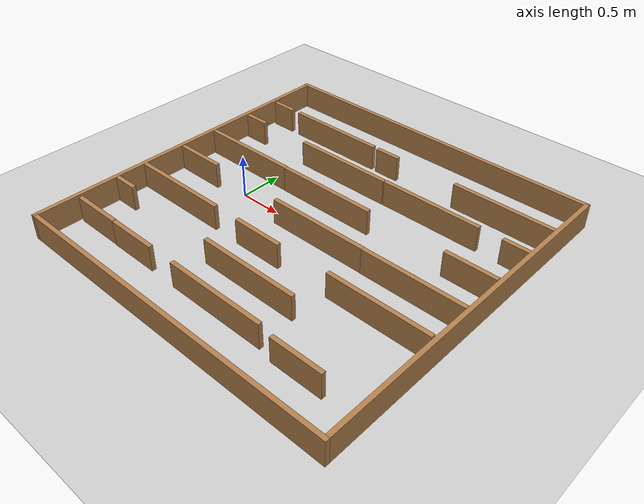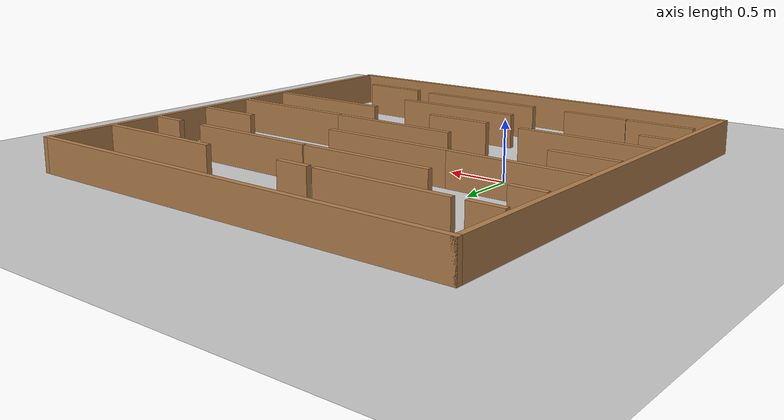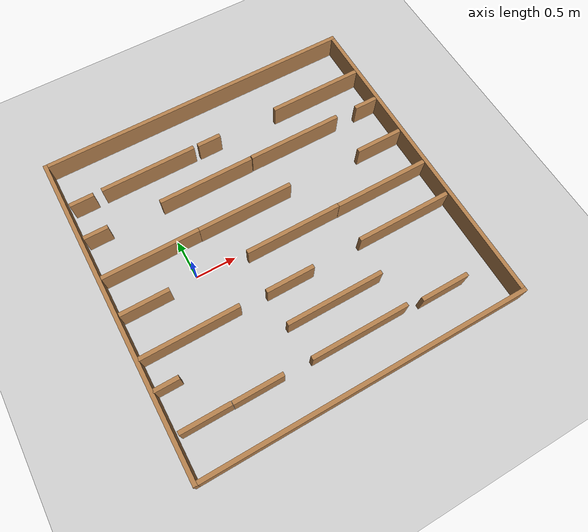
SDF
<sdf version="1.7">
 <world name="default">
  <light name="sun" type="directional">
   <pose>0 0 10 0 -0 0</pose>
   <diffuse>0.8 0.8 0.8 1</diffuse>
   <specular>0.2 0.2 0.2 1</specular>
   <attenuation>
    <range>1000</range>
    <constant>0.9</constant>
    <linear>0.01</linear>
    <quadratic>0.001</quadratic>
   </attenuation>
   <direction>-0.5 0.1 -0.9</direction>
   <spot><inner_angle>0</inner_angle><outer_angle>0</outer_angle><falloff>0</falloff></spot>
  </light>
  <model name="ground_plane">
   <static>1</static>
   <link name="link">
    <collision name="collision">
     <geometry><plane><normal>0 0 1</normal><size>100 100</size></plane></geometry>
     <surface>
      <contact><collide_bitmask>65535</collide_bitmask></contact>
      <friction><ode><mu>100</mu><mu2>50</mu2></ode></friction>
     </surface>
    </collision>
    <visual name="visual">
     <cast_shadows>0</cast_shadows>
     <geometry><plane><normal>0 0 1</normal><size>100 100</size></plane></geometry>
     <material>
      <script><uri>file://media/materials/scripts/gazebo.material</uri><name>Gazebo/Grey</name></script>
     </material>
    </visual>
   </link>
  </model>
  <gravity>0 0 -9.8</gravity>
  <magnetic_field>6e-06 2.3e-05 -4.2e-05</magnetic_field>
  <atmosphere type="adiabatic"/>
  <physics type="ode">
   <max_step_size>0.001</max_step_size>
   <real_time_factor>1</real_time_factor>
   <real_time_update_rate>1000</real_time_update_rate>
  </physics>
  <scene><ambient>0.4 0.4 0.4 1</ambient><background>0.7 0.7 0.7 1</background><shadows>1</shadows></scene>
  <audio><device>default</device></audio>
  <spherical_coordinates>
   <surface_model>EARTH_WGS84</surface_model>
   <latitude_deg>0</latitude_deg>
   <longitude_deg>0</longitude_deg>
   <elevation>0</elevation>
   <heading_deg>0</heading_deg>
  </spherical_coordinates>
  <model name="square4m">
   <pose>1.02966 0.01933 0 0 -0 0</pose>
   <link name="Wall_10">
    <collision name="Wall_10_Collision">
     <geometry><box><size>4.05 0.05 0.3</size></box></geometry>
     <pose>0 0 0.15 0 -0 0</pose>
    </collision>
    <visual name="Wall_10_Visual">
     <pose>0 0 0.15 0 -0 0</pose>
     <geometry><box><size>4.05 0.05 0.3</size></box></geometry>
     <material>
      <script><uri>file://media/materials/scripts/gazebo.material</uri><name>Gazebo/Wood</name></script>
      <ambient>1 1 1 1</ambient>
     </material>
     <meta><layer>0</layer></meta>
    </visual>
    <pose>0 2 0 0 -0 0</pose>
   </link>
   <link name="Wall_12">
    <collision name="Wall_12_Collision">
     <geometry><box><size>4.05 0.05 0.3</size></box></geometry>
     <pose>0 0 0.15 0 -0 0</pose>
    </collision>
    <visual name="Wall_12_Visual">
     <pose>0 0 0.15 0 -0 0</pose>
     <geometry><box><size>4.05 0.05 0.3</size></box></geometry>
     <material>
      <script><uri>file://media/materials/scripts/gazebo.material</uri><name>Gazebo/Wood</name></script>
      <ambient>1 1 1 1</ambient>
     </material>
     <meta><layer>0</layer></meta>
    </visual>
    <pose>2 0 0 0 -0 -1.5708</pose>
   </link>
   <link name="Wall_14">
    <collision name="Wall_14_Collision">
     <geometry><box><size>4.05 0.05 0.3</size></box></geometry>
     <pose>0 0 0.15 0 -0 0</pose>
    </collision>
    <visual name="Wall_14_Visual">
     <pose>0 0 0.15 0 -0 0</pose>
     <geometry><box><size>4.05 0.05 0.3</size></box></geometry>
     <material>
      <script><uri>file://media/materials/scripts/gazebo.material</uri><name>Gazebo/Wood</name></script>
      <ambient>1 1 1 1</ambient>
     </material>
     <meta><layer>0</layer></meta>
    </visual>
    <pose>0 -2 0 0 -0 3.14159</pose>
   </link>
   <link name="Wall_8">
    <collision name="Wall_8_Collision">
     <geometry><box><size>4.05 0.05 0.3</size></box></geometry>
     <pose>0 0 0.15 0 -0 0</pose>
    </collision>
    <visual name="Wall_8_Visual">
     <pose>0 0 0.15 0 -0 0</pose>
     <geometry><box><size>4.05 0.05 0.3</size></box></geometry>
     <material>
      <script><uri>file://media/materials/scripts/gazebo.material</uri><name>Gazebo/Wood</name></script>
      <ambient>1 1 1 1</ambient>
     </material>
     <meta><layer>0</layer></meta>
    </visual>
    <pose>-2 0 0 0 -0 -1.5708</pose>
   </link>
   <static>1</static>
  </model>
  <model name="wall120cm">
   <pose>1.23004 -1.49223 0 0 -0 0</pose>
   <link name="Wall_11">
    <collision name="Wall_11_Collision">
     <geometry><box><size>1.2 0.05 0.3</size></box></geometry>
     <pose>0 0 0.15 0 -0 0</pose>
    </collision>
    <visual name="Wall_11_Visual">
     <pose>0 0 0.15 0 -0 0</pose>
     <geometry><box><size>1.2 0.05 0.3</size></box></geometry>
     <material>
      <script><uri>file://media/materials/scripts/gazebo.material</uri><name>Gazebo/Wood</name></script>
      <ambient>1 1 1 1</ambient>
     </material>
     <meta><layer>0</layer></meta>
    </visual>
   </link>
   <static>1</static>
  </model>
  <model name="wall60cm_0">
   <pose>-0.605472 -1.48388 0 0 -0 0</pose>
   <link name="Wall_4">
    <collision name="Wall_4_Collision">
     <geometry><box><size>0.6 0.05 0.3</size></box></geometry>
     <pose>0 0 0.15 0 -0 0</pose>
    </collision>
    <visual name="Wall_4_Visual">
     <pose>0 0 0.15 0 -0 0</pose>
     <geometry><box><size>0.6 0.05 0.3</size></box></geometry>
     <material>
      <script><uri>file://media/materials/scripts/gazebo.material</uri><name>Gazebo/Wood</name></script>
      <ambient>1 1 1 1</ambient>
     </material>
     <meta><layer>0</layer></meta>
    </visual>
   </link>
   <static>1</static>
  </model>
  <model name="wall60cm_1">
   <pose>-7e-06 -1.48777 0 0 -0 0</pose>
   <link name="Wall_4">
    <collision name="Wall_4_Collision">
     <geometry><box><size>0.6 0.05 0.3</size></box></geometry>
     <pose>0 0 0.15 0 -0 0</pose>
    </collision>
    <visual name="Wall_4_Visual">
     <pose>0 0 0.15 0 -0 0</pose>
     <geometry><box><size>0.6 0.05 0.3</size></box></geometry>
     <material>
      <script><uri>file://media/materials/scripts/gazebo.material</uri><name>Gazebo/Wood</name></script>
      <ambient>1 1 1 1</ambient>
     </material>
     <meta><layer>0</layer></meta>
    </visual>
   </link>
   <static>1</static>
  </model>
  <model name="wall120cm_0">
   <pose>1.1896 -1.04862 0 0 -0 0</pose>
   <link name="Wall_11">
    <collision name="Wall_11_Collision">
     <geometry><box><size>1.2 0.05 0.3</size></box></geometry>
     <pose>0 0 0.15 0 -0 0</pose>
    </collision>
    <visual name="Wall_11_Visual">
     <pose>0 0 0.15 0 -0 0</pose>
     <geometry><box><size>1.2 0.05 0.3</size></box></geometry>
     <material>
      <script><uri>file://media/materials/scripts/gazebo.material</uri><name>Gazebo/Wood</name></script>
      <ambient>1 1 1 1</ambient>
     </material>
     <meta><layer>0</layer></meta>
    </visual>
   </link>
   <static>1</static>
  </model>
  <model name="wall60cm">
   <pose>2.29958 -1.5295 0 0 -0 0</pose>
   <link name="Wall_4">
    <collision name="Wall_4_Collision">
     <geometry><box><size>0.6 0.05 0.3</size></box></geometry>
     <pose>0 0 0.15 0 -0 0</pose>
    </collision>
    <visual name="Wall_4_Visual">
     <pose>0 0 0.15 0 -0 0</pose>
     <geometry><box><size>0.6 0.05 0.3</size></box></geometry>
     <material>
      <script><uri>file://media/materials/scripts/gazebo.material</uri><name>Gazebo/Wood</name></script>
      <ambient>1 1 1 1</ambient>
     </material>
     <meta><layer>0</layer></meta>
    </visual>
   </link>
   <static>1</static>
  </model>
  <model name="wall120cm_1">
   <pose>2.39179 -0.602817 0 0 -0 0</pose>
   <link name="Wall_11">
    <collision name="Wall_11_Collision">
     <geometry><box><size>1.2 0.05 0.3</size></box></geometry>
     <pose>0 0 0.15 0 -0 0</pose>
    </collision>
    <visual name="Wall_11_Visual">
     <pose>0 0 0.15 0 -0 0</pose>
     <geometry><box><size>1.2 0.05 0.3</size></box></geometry>
     <material>
      <script><uri>file://media/materials/scripts/gazebo.material</uri><name>Gazebo/Wood</name></script>
      <ambient>1 1 1 1</ambient>
     </material>
     <meta><layer>0</layer></meta>
    </visual>
   </link>
   <static>1</static>
  </model>
  <model name="wall60cm_2">
   <pose>0.871927 -0.621729 0 0 -0 0</pose>
   <link name="Wall_4">
    <collision name="Wall_4_Collision">
     <geometry><box><size>0.6 0.05 0.3</size></box></geometry>
     <pose>0 0 0.15 0 -0 0</pose>
    </collision>
    <visual name="Wall_4_Visual">
     <pose>0 0 0.15 0 -0 0</pose>
     <geometry><box><size>0.6 0.05 0.3</size></box></geometry>
     <material>
      <script><uri>file://media/materials/scripts/gazebo.material</uri><name>Gazebo/Wood</name></script>
      <ambient>1 1 1 1</ambient>
     </material>
     <meta><layer>0</layer></meta>
    </visual>
   </link>
   <static>1</static>
  </model>
  <model name="wall120cm_2">
   <pose>-0.351481 -0.61855 0 0 -0 0</pose>
   <link name="Wall_11">
    <collision name="Wall_11_Collision">
     <geometry><box><size>1.2 0.05 0.3</size></box></geometry>
     <pose>0 0 0.15 0 -0 0</pose>
    </collision>
    <visual name="Wall_11_Visual">
     <pose>0 0 0.15 0 -0 0</pose>
     <geometry><box><size>1.2 0.05 0.3</size></box></geometry>
     <material>
      <script><uri>file://media/materials/scripts/gazebo.material</uri><name>Gazebo/Wood</name></script>
      <ambient>1 1 1 1</ambient>
     </material>
     <meta><layer>0</layer></meta>
    </visual>
   </link>
   <static>1</static>
  </model>
  <model name="wall120cm_3">
   <pose>2.40266 -0.116955 0 0 -0 0</pose>
   <link name="Wall_11">
    <collision name="Wall_11_Collision">
     <geometry><box><size>1.2 0.05 0.3</size></box></geometry>
     <pose>0 0 0.15 0 -0 0</pose>
    </collision>
    <visual name="Wall_11_Visual">
     <pose>0 0 0.15 0 -0 0</pose>
     <geometry><box><size>1.2 0.05 0.3</size></box></geometry>
     <material>
      <script><uri>file://media/materials/scripts/gazebo.material</uri><name>Gazebo/Wood</name></script>
      <ambient>1 1 1 1</ambient>
     </material>
     <meta><layer>0</layer></meta>
    </visual>
   </link>
   <static>1</static>
  </model>
  <model name="wall120cm_4">
   <pose>1.20697 -0.113841 0 0 -0 0</pose>
   <link name="Wall_11">
    <collision name="Wall_11_Collision">
     <geometry><box><size>1.2 0.05 0.3</size></box></geometry>
     <pose>0 0 0.15 0 -0 0</pose>
    </collision>
    <visual name="Wall_11_Visual">
     <pose>0 0 0.15 0 -0 0</pose>
     <geometry><box><size>1.2 0.05 0.3</size></box></geometry>
     <material>
      <script><uri>file://media/materials/scripts/gazebo.material</uri><name>Gazebo/Wood</name></script>
      <ambient>1 1 1 1</ambient>
     </material>
     <meta><layer>0</layer></meta>
    </visual>
   </link>
   <static>1</static>
  </model>
  <model name="wall60cm_3">
   <pose>-0.6378 -0.084483 0 0 -0 0</pose>
   <link name="Wall_4">
    <collision name="Wall_4_Collision">
     <geometry><box><size>0.6 0.05 0.3</size></box></geometry>
     <pose>0 0 0.15 0 -0 0</pose>
    </collision>
    <visual name="Wall_4_Visual">
     <pose>0 0 0.15 0 -0 0</pose>
     <geometry><box><size>0.6 0.05 0.3</size></box></geometry>
     <material>
      <script><uri>file://media/materials/scripts/gazebo.material</uri><name>Gazebo/Wood</name></script>
      <ambient>1 1 1 1</ambient>
     </material>
     <meta><layer>0</layer></meta>
    </visual>
   </link>
   <static>1</static>
  </model>
  <model name="wall120cm_5">
   <pose>-0.341666 0.397904 0 0 -0 0</pose>
   <link name="Wall_11">
    <collision name="Wall_11_Collision">
     <geometry><box><size>1.2 0.05 0.3</size></box></geometry>
     <pose>0 0 0.15 0 -0 0</pose>
    </collision>
    <visual name="Wall_11_Visual">
     <pose>0 0 0.15 0 -0 0</pose>
     <geometry><box><size>1.2 0.05 0.3</size></box></geometry>
     <material>
      <script><uri>file://media/materials/scripts/gazebo.material</uri><name>Gazebo/Wood</name></script>
      <ambient>1 1 1 1</ambient>
     </material>
     <meta><layer>0</layer></meta>
    </visual>
   </link>
   <static>1</static>
  </model>
  <model name="wall120cm_6">
   <pose>0.855686 0.394789 0 0 -0 0</pose>
   <link name="Wall_11">
    <collision name="Wall_11_Collision">
     <geometry><box><size>1.2 0.05 0.3</size></box></geometry>
     <pose>0 0 0.15 0 -0 0</pose>
    </collision>
    <visual name="Wall_11_Visual">
     <pose>0 0 0.15 0 -0 0</pose>
     <geometry><box><size>1.2 0.05 0.3</size></box></geometry>
     <material>
      <script><uri>file://media/materials/scripts/gazebo.material</uri><name>Gazebo/Wood</name></script>
      <ambient>1 1 1 1</ambient>
     </material>
     <meta><layer>0</layer></meta>
    </visual>
   </link>
   <static>1</static>
  </model>
  <model name="wall30cm">
   <pose>-0.804924 -0.989571 0 0 -0 0</pose>
   <link name="Wall_0">
    <collision name="Wall_0_Collision">
     <geometry><box><size>0.3 0.05 0.3</size></box></geometry>
     <pose>0 0 0.15 0 -0 0</pose>
    </collision>
    <visual name="Wall_0_Visual">
     <pose>0 0 0.15 0 -0 0</pose>
     <geometry><box><size>0.3 0.05 0.3</size></box></geometry>
     <material>
      <script><uri>file://media/materials/scripts/gazebo.material</uri><name>Gazebo/Wood</name></script>
      <ambient>1 1 1 1</ambient>
     </material>
     <meta><layer>0</layer></meta>
    </visual>
   </link>
   <static>1</static>
  </model>
  <model name="wall60cm_4">
   <pose>2.69775 0.389993 0 0 -0 0</pose>
   <link name="Wall_4">
    <collision name="Wall_4_Collision">
     <geometry><box><size>0.6 0.05 0.3</size></box></geometry>
     <pose>0 0 0.15 0 -0 0</pose>
    </collision>
    <visual name="Wall_4_Visual">
     <pose>0 0 0.15 0 -0 0</pose>
     <geometry><box><size>0.6 0.05 0.3</size></box></geometry>
     <material>
      <script><uri>file://media/materials/scripts/gazebo.material</uri><name>Gazebo/Wood</name></script>
      <ambient>1 1 1 1</ambient>
     </material>
     <meta><layer>0</layer></meta>
    </visual>
   </link>
   <static>1</static>
  </model>
  <model name="wall30cm_0">
   <pose>2.85323 0.93421 0 0 -0 0</pose>
   <link name="Wall_0">
    <collision name="Wall_0_Collision">
     <geometry><box><size>0.3 0.05 0.3</size></box></geometry>
     <pose>0 0 0.15 0 -0 0</pose>
    </collision>
    <visual name="Wall_0_Visual">
     <pose>0 0 0.15 0 -0 0</pose>
     <geometry><box><size>0.3 0.05 0.3</size></box></geometry>
     <material>
      <script><uri>file://media/materials/scripts/gazebo.material</uri><name>Gazebo/Wood</name></script>
      <ambient>1 1 1 1</ambient>
     </material>
     <meta><layer>0</layer></meta>
    </visual>
   </link>
   <static>1</static>
  </model>
  <model name="wall120cm_7">
   <pose>1.83308 0.936857 0 0 -0 0</pose>
   <link name="Wall_11">
    <collision name="Wall_11_Collision">
     <geometry><box><size>1.2 0.05 0.3</size></box></geometry>
     <pose>0 0 0.15 0 -0 0</pose>
    </collision>
    <visual name="Wall_11_Visual">
     <pose>0 0 0.15 0 -0 0</pose>
     <geometry><box><size>1.2 0.05 0.3</size></box></geometry>
     <material>
      <script><uri>file://media/materials/scripts/gazebo.material</uri><name>Gazebo/Wood</name></script>
      <ambient>1 1 1 1</ambient>
     </material>
     <meta><layer>0</layer></meta>
    </visual>
   </link>
   <static>1</static>
  </model>
  <model name="wall120cm_8">
   <pose>0.622525 0.932953 0 0 -0 0</pose>
   <link name="Wall_11">
    <collision name="Wall_11_Collision">
     <geometry><box><size>1.2 0.05 0.3</size></box></geometry>
     <pose>0 0 0.15 0 -0 0</pose>
    </collision>
    <visual name="Wall_11_Visual">
     <pose>0 0 0.15 0 -0 0</pose>
     <geometry><box><size>1.2 0.05 0.3</size></box></geometry>
     <material>
      <script><uri>file://media/materials/scripts/gazebo.material</uri><name>Gazebo/Wood</name></script>
      <ambient>1 1 1 1</ambient>
     </material>
     <meta><layer>0</layer></meta>
    </visual>
   </link>
   <static>1</static>
  </model>
  <model name="wall30cm_1">
   <pose>-0.778793 0.936598 0 0 -0 0</pose>
   <link name="Wall_0">
    <collision name="Wall_0_Collision">
     <geometry><box><size>0.3 0.05 0.3</size></box></geometry>
     <pose>0 0 0.15 0 -0 0</pose>
    </collision>
    <visual name="Wall_0_Visual">
     <pose>0 0 0.15 0 -0 0</pose>
     <geometry><box><size>0.3 0.05 0.3</size></box></geometry>
     <material>
      <script><uri>file://media/materials/scripts/gazebo.material</uri><name>Gazebo/Wood</name></script>
      <ambient>1 1 1 1</ambient>
     </material>
     <meta><layer>0</layer></meta>
    </visual>
   </link>
   <static>1</static>
  </model>
  <model name="wall30cm_2">
   <pose>0.894329 1.40367 0 0 -0 0</pose>
   <link name="Wall_0">
    <collision name="Wall_0_Collision">
     <geometry><box><size>0.3 0.05 0.3</size></box></geometry>
     <pose>0 0 0.15 0 -0 0</pose>
    </collision>
    <visual name="Wall_0_Visual">
     <pose>0 0 0.15 0 -0 0</pose>
     <geometry><box><size>0.3 0.05 0.3</size></box></geometry>
     <material>
      <script><uri>file://media/materials/scripts/gazebo.material</uri><name>Gazebo/Wood</name></script>
      <ambient>1 1 1 1</ambient>
     </material>
     <meta><layer>0</layer></meta>
    </visual>
   </link>
   <static>1</static>
  </model>
  <model name="wall120cm_9">
   <pose>0.089437 1.40576 0 0 -0 0</pose>
   <link name="Wall_11">
    <collision name="Wall_11_Collision">
     <geometry><box><size>1.2 0.05 0.3</size></box></geometry>
     <pose>0 0 0.15 0 -0 0</pose>
    </collision>
    <visual name="Wall_11_Visual">
     <pose>0 0 0.15 0 -0 0</pose>
     <geometry><box><size>1.2 0.05 0.3</size></box></geometry>
     <material>
      <script><uri>file://media/materials/scripts/gazebo.material</uri><name>Gazebo/Wood</name></script>
      <ambient>1 1 1 1</ambient>
     </material>
     <meta><layer>0</layer></meta>
    </visual>
   </link>
   <static>1</static>
  </model>
  <model name="wall30cm_3">
   <pose>-0.763411 1.40051 0 0 -0 0</pose>
   <link name="Wall_0">
    <collision name="Wall_0_Collision">
     <geometry><box><size>0.3 0.05 0.3</size></box></geometry>
     <pose>0 0 0.15 0 -0 0</pose>
    </collision>
    <visual name="Wall_0_Visual">
     <pose>0 0 0.15 0 -0 0</pose>
     <geometry><box><size>0.3 0.05 0.3</size></box></geometry>
     <material>
      <script><uri>file://media/materials/scripts/gazebo.material</uri><name>Gazebo/Wood</name></script>
      <ambient>1 1 1 1</ambient>
     </material>
     <meta><layer>0</layer></meta>
    </visual>
   </link>
   <static>1</static>
  </model>
  <model name="wall120cm_10">
   <pose>2.4061 1.40721 0 0 -0 0</pose>
   <link name="Wall_11">
    <collision name="Wall_11_Collision">
     <geometry><box><size>1.2 0.05 0.3</size></box></geometry>
     <pose>0 0 0.15 0 -0 0</pose>
    </collision>
    <visual name="Wall_11_Visual">
     <pose>0 0 0.15 0 -0 0</pose>
     <geometry><box><size>1.2 0.05 0.3</size></box></geometry>
     <material>
      <script><uri>file://media/materials/scripts/gazebo.material</uri><name>Gazebo/Wood</name></script>
      <ambient>1 1 1 1</ambient>
     </material>
     <meta><layer>0</layer></meta>
    </visual>
   </link>
   <static>1</static>
  </model>
 </world>
</sdf>
